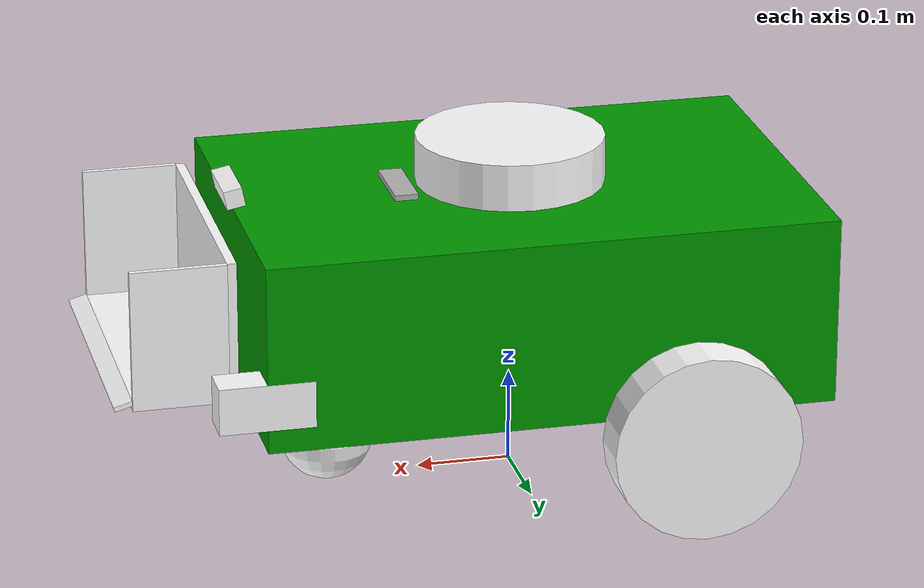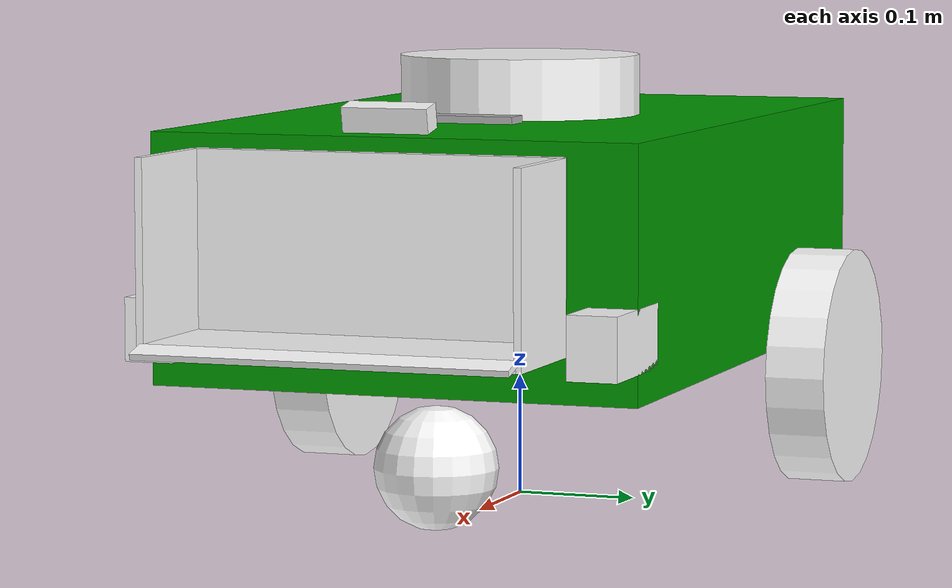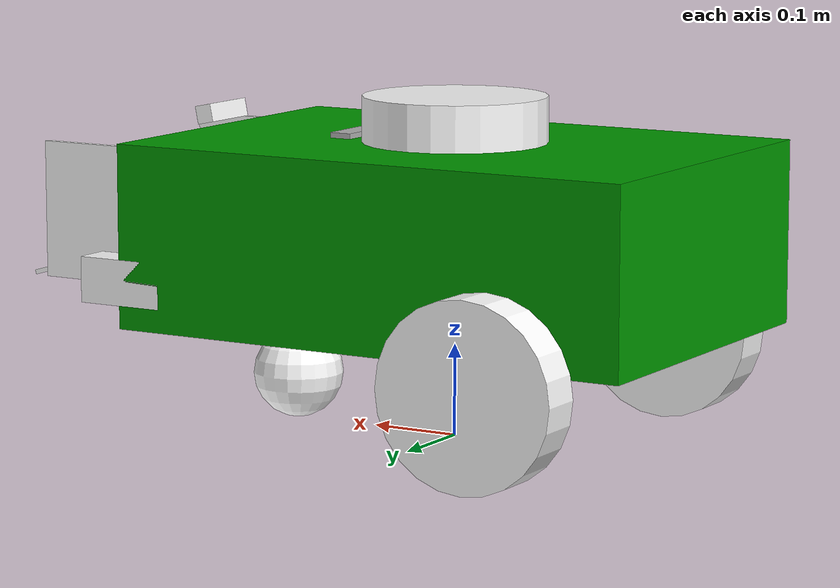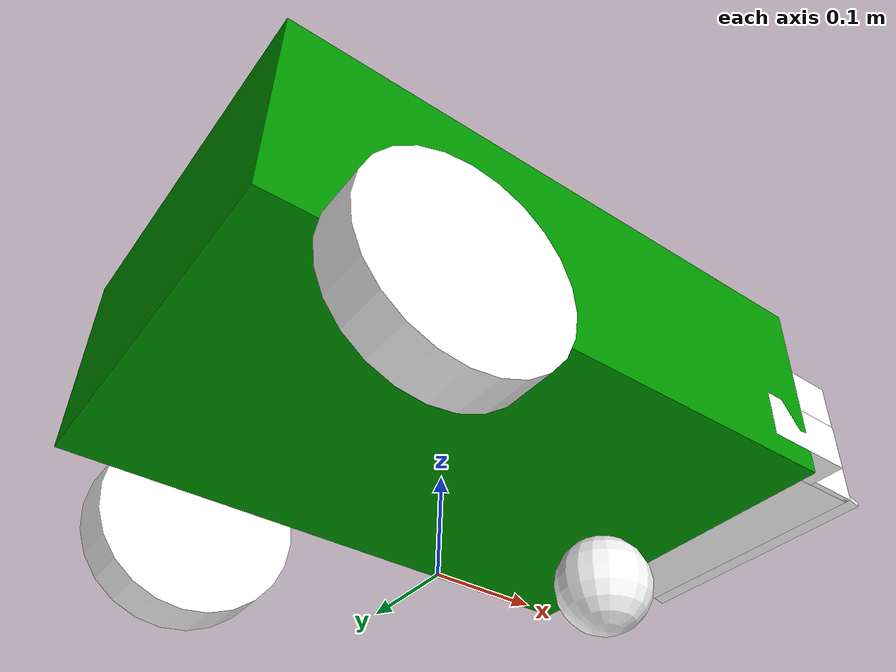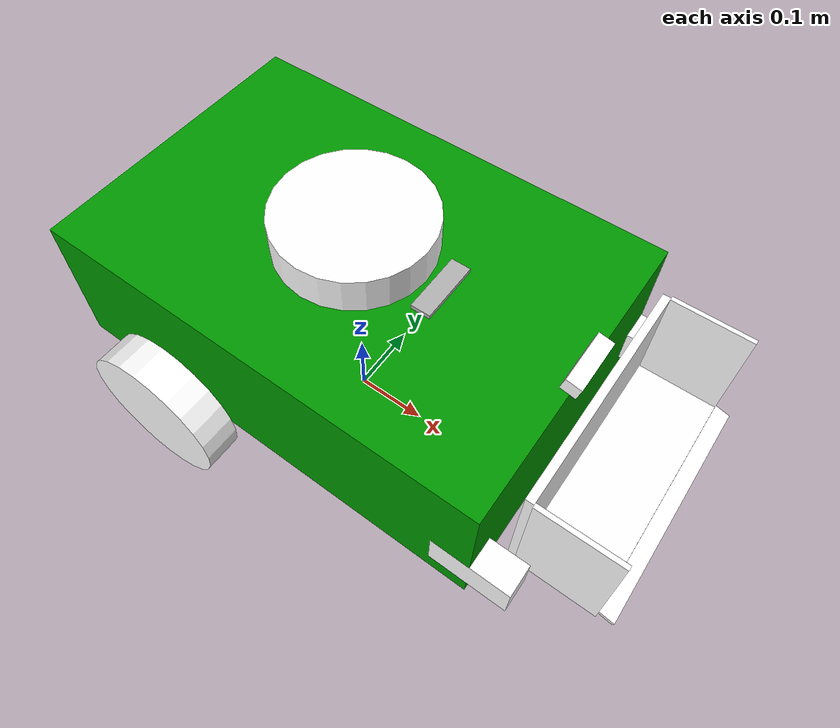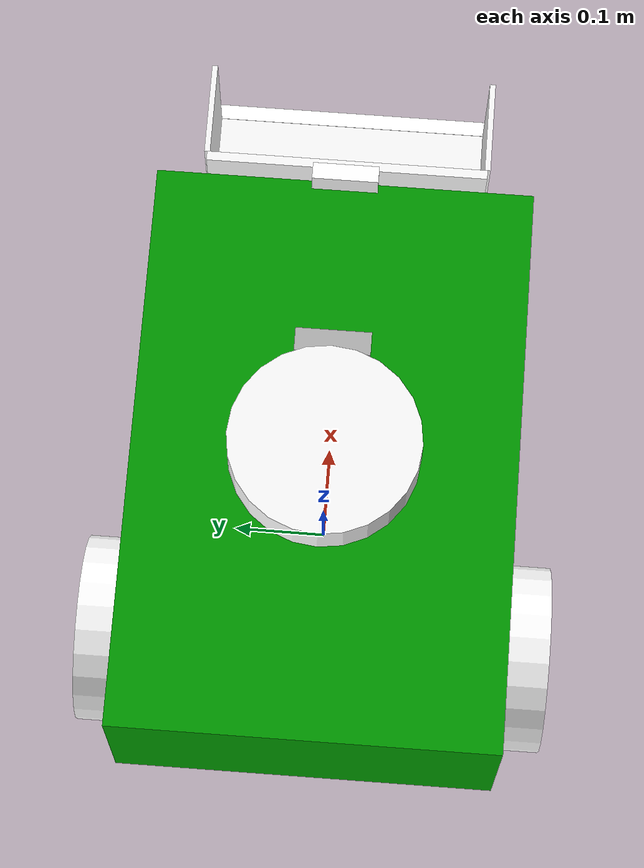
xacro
<?xml version="1.0"?>
<robot xmlns:xacro="http://www.ros.org/wiki/xacro" name="autonomous_sphere_collector">

    <ros2_control name="DiffDriveSystem" type="system">
        <hardware>
            <plugin>gz_ros2_control::GazeboSystem</plugin>
        </hardware>

        <!-- Left wheel joint -->
        <joint name="base_left_wheel">
            <command_interfaces>
                <command_interface name="velocity"/>
            </command_interfaces>
            <state_interfaces>
                <state_interface name="position"/>
                <state_interface name="velocity"/>
            </state_interfaces>
        </joint>

        <!-- Right wheel joint -->
        <joint name="base_right_wheel">
            <command_interfaces>
                <command_interface name="velocity"/>
            </command_interfaces>
            <state_interfaces>
                <state_interface name="position"/>
                <state_interface name="velocity"/>
            </state_interfaces>
        </joint>

        <!-- Left wing joint (for scoop control) -->
        <joint name="scoop_left_wing_joint">
            <command_interfaces>
                <command_interface name="position"/>
            </command_interfaces>
            <state_interfaces>
                <state_interface name="position"/>
                <state_interface name="velocity"/>
            </state_interfaces>
        </joint>

        <!-- Right wing joint (Added for completeness, must be included in ros2_control) -->
        <joint name="scoop_right_wing_joint">
            <command_interfaces>
                <command_interface name="position"/>
            </command_interfaces>
            <state_interfaces>
                <state_interface name="position"/>
                <state_interface name="velocity"/>
            </state_interfaces>
        </joint>
    </ros2_control>

    <!--  MATERIALS MACRO  -->
    <xacro:macro name="define_materials">
    <material name="grey">
        <color rgba="0.7 0.7 0.7 1"/>
    </material>

    <material name="green">
        <color rgba="0 0.6 0 1"/>
    </material>

    <material name="white">
        <color rgba="1 1 1 1"/>
    </material>
    <!-- GAZEBO SENSOR MACROS -->

    <!-- Lidar plugin macro -->
    <xacro:macro name="gazebo_lidar_plugin" params="reference name update_rate samples resolution min_angle max_angle min_range max_range range_res">
        <gazebo reference="${reference}">
            <sensor name="${name}" type="lidar">
                <update_rate>${update_rate}</update_rate>
                <lidar>
                    <horizontal>
                        <samples>${samples}</samples>
                        <resolution>${resolution}</resolution>
                        <min_angle>${min_angle}</min_angle>
                        <max_angle>${max_angle}</max_angle>
                    </horizontal>
                    <range>
                        <min>${min_range}</min>
                        <max>${max_range}</max>
                        <resolution>${range_res}</resolution>
                    </range>
                </lidar>
            </sensor>
        </gazebo>
    </xacro:macro>

    <!-- Camera plugin macro -->
    <xacro:macro name="gazebo_camera_plugin" params="reference name update_rate fov width height format near far">
        <gazebo reference="${reference}">
            <sensor name="${name}" type="camera">
                <update_rate>${update_rate}</update_rate>
                <camera>
                    <horizontal_fov>${fov}</horizontal_fov>
                    <image>
                        <width>${width}</width>
                        <height>${height}</height>
                        <format>${format}</format>
                    </image>
                    <clip>
                        <near>${near}</near>
                        <far>${far}</far>
                    </clip>
                </camera>
            </sensor>
        </gazebo>
    </xacro:macro>

    <!-- IMU plugin macro -->
    <xacro:macro name="gazebo_imu_plugin" params="reference name update_rate">
        <gazebo reference="${reference}">
            <sensor name="${name}" type="imu">
                <update_rate>${update_rate}</update_rate>
                <imu>
                    <angular_velocity/>
                    <linear_acceleration/>
                </imu>
            </sensor>
        </gazebo>
    </xacro:macro>

    <!-- ==================== GAZEBO SENSOR CALLS ==================== -->

    <!-- Lidar -->
    <xacro:gazebo_lidar_plugin
        reference="lidar"
        name="lidar_sensor"
        update_rate="30"
        samples="720" resolution="1"
        min_angle="-3.14" max_angle="3.14"
        min_range="0.1" max_range="30.0"
        range_res="0.01"/>

    <!-- Camera -->
    <xacro:gazebo_camera_plugin
        reference="camera_link"
        name="camera_sensor"
        update_rate="30"
        fov="1.57"
        width="640" height="480"
        format="R8G8B8"
        near="0.1" far="50.0"/>

    <!-- IMU -->
    <xacro:gazebo_imu_plugin
        reference="imu_link"
        name="imu_sensor"
        update_rate="100"/>

    </xacro:macro>

    <!-- MATERIALS CALL -->
    <xacro:define_materials/>

    <!-- DUMMY LINK AS A FRAME -->
    <link name="base_footprint"/>
    <link name="bucket"/>

    <!--  LINK MACROS  -->
    <xacro:macro name="box_link" params="name size_x size_y size_z origin_xyz origin_rpy mass material ixx:=0 iyy:=0 izz:=0 ixy:=0 ixz:=0 iyz:=0">
        <link name="${name}">
            <visual>
                <geometry><box size="${size_x} ${size_y} ${size_z}"/></geometry>
                <origin xyz="${origin_xyz}" rpy="${origin_rpy}"/>
                <material name="${material}"/>
            </visual>
            <collision>
                <geometry><box size="${size_x} ${size_y} ${size_z}"/></geometry>
                <origin xyz="${origin_xyz}" rpy="${origin_rpy}"/>
            </collision>
            <inertial>
                <mass value="${mass}"/>
                <origin xyz="${origin_xyz}" rpy="${origin_rpy}"/>
                <inertia ixx="${ixx}" iyy="${iyy}" izz="${izz}" ixy="${ixy}" ixz="${ixz}" iyz="${iyz}"/>
            </inertial>
        </link>
    </xacro:macro>

    <xacro:macro name="cylinder_link" params="name radius length origin_xyz origin_rpy material mass:=0.1 ixx:=0 iyy:=0 izz:=0">
        <link name="${name}">
            <visual>
                <geometry><cylinder radius="${radius}" length="${length}"/></geometry>
                <origin xyz="${origin_xyz}" rpy="${origin_rpy}"/>
                <material name="${material}"/>
            </visual>
            <collision>
                <geometry><cylinder radius="${radius}" length="${length}"/></geometry>
                <origin xyz="${origin_xyz}" rpy="${origin_rpy}"/>
            </collision>
            <inertial>
                <mass value="${mass}"/>
                <origin xyz="${origin_xyz}" rpy="${origin_rpy}"/>
                <inertia ixx="${ixx}" iyy="${iyy}" izz="${izz}" ixy="0" ixz="0" iyz="0"/>
            </inertial>
        </link>
    </xacro:macro>

    <!-- LINK CALLS  -->

    <!-- Base link -->
    <xacro:box_link
    name="base_link"
    size_x="0.6" size_y="0.4" size_z="0.2"
    origin_xyz="0 0 0.1" origin_rpy="0 0 0"
    mass="10.0" material="green"
    ixx="0.183" iyy="0.333" izz="0.500"/>

    <!-- Lidar -->
    <xacro:cylinder_link
    name="lidar"
    radius="0.1" length="0.05"
    origin_xyz="0 0 0" origin_rpy="0 0 0"
    mass="0.1" material="white"
    ixx="0.0001" iyy="0.0001" izz="0.0001"/>

    <!-- Camera -->
    <xacro:box_link
    name="camera_link"
    size_x="0.02" size_y="0.07" size_z="0.02"
    origin_xyz="0 0 0" origin_rpy="0 0 0"
    mass="0.1" material="white"
    ixx="0.0001" iyy="0.0001" izz="0.0001"/>

    <!-- IMU -->
    <xacro:box_link
    name="imu_link"
    size_x="0.025" size_y="0.08" size_z="0.01"
    origin_xyz="0 0 0" origin_rpy="0 0 0"
    mass="0.05" material="grey"
    ixx="0.00002" iyy="0.00002" izz="0.00002"/>

    <!--  WHEEL MACRO  -->
    <xacro:macro name="wheel_link" params="name radius length origin_rpy mass material ixx:=0.00375 iyy:=0.00375 izz:=0.005">
        <link name="${name}">
            <visual>
                <geometry>
                    <cylinder radius="${radius}" length="${length}"/>
                </geometry>
                <origin xyz="0 0 0" rpy="${origin_rpy}"/>
                <material name="${material}"/>
            </visual>
            <collision>
                <geometry>
                    <cylinder radius="${radius}" length="${length}"/>
                </geometry>
                <origin xyz="0 0 0" rpy="${origin_rpy}"/>
            </collision>
            <inertial>
                <mass value="${mass}"/>
                <origin xyz="0 0 0" rpy="${origin_rpy}"/>
                <inertia ixx="${ixx}" iyy="${iyy}" izz="${izz}" ixy="0.0" ixz="0.0" iyz="0.0"/>
            </inertial>
        </link>
    </xacro:macro>

<!--  WHEEL CALLS  -->
    <xacro:wheel_link
        name="left_wheel"
        radius="0.1" length="0.05"
        origin_rpy="1.57 0 0"
        mass="1.0"
        material="white"/>

    <xacro:wheel_link
        name="right_wheel"
        radius="0.1" length="0.05"
        origin_rpy="1.57 0 0"
        mass="1.0"
        material="white"/>

   <!--  CASTER WHEEL MACRO  -->
    <xacro:macro name="caster_link" params="name radius mass material ixx:=0.001 iyy:=0.001 izz:=0.001">
        <link name="${name}">
            <visual>
                <geometry>
                    <sphere radius="${radius}"/>
                </geometry>
                <origin xyz="0 0 0" rpy="0 0 0"/>
                <material name="${material}"/>
            </visual>
            <collision>
                <geometry>
                    <sphere radius="${radius}"/>
                </geometry>
                <origin xyz="0 0 0" rpy="0 0 0"/>
            </collision>
            <inertial>
                <mass value="${mass}"/>
                <origin xyz="0 0 0" rpy="0 0 0"/>
                <inertia ixx="${ixx}" iyy="${iyy}" izz="${izz}" ixy="0.0" ixz="0.0" iyz="0.0"/>
            </inertial>
        </link>
    </xacro:macro>

    <!--  CASTER WHEEL CALL  -->
    <xacro:caster_link
        name="caster_wheel"
        radius="0.05"
        mass="0.5"
        material="white"/>

    <!--  WING MACRO -->
    <xacro:macro name="wing_link" params="name size_x size_y size_z mass material ixx:=0.00104 iyy:=0.00229 izz:=0.00271">
        <link name="${name}">
            <visual>
                <geometry>
                    <box size="${size_x} ${size_y} ${size_z}"/>
                </geometry>
                <origin xyz="0 0 0" rpy="0 0 0"/>
                <material name="${material}"/>
            </visual>
            <collision>
                <geometry>
                    <box size="${size_x} ${size_y} ${size_z}"/>
                </geometry>
                <origin xyz="0 0 0" rpy="0 0 0"/>
            </collision>
            <inertial>
                <mass value="${mass}"/>
                <origin xyz="0 0 0" rpy="0 0 0"/>
                <inertia ixx="${ixx}" iyy="${iyy}" izz="${izz}" ixy="0.0" ixz="0.0" iyz="0.0"/>
            </inertial>
        </link>
    </xacro:macro>

    <!--  WING CALLS -->
    <xacro:wing_link
        name="scoop_left_wing"
        size_x="0.1" size_y="0.040" size_z="0.05"
        mass="0.5"
        material="white"/>

    <xacro:wing_link
        name="scoop_right_wing"
        size_x="0.1" size_y="0.040" size_z="0.05"
        mass="0.5"
        material="white"/>

    <!-- BUCKET WALL CALLS  -->

    <!-- Bottom wall -->
    <xacro:box_link
        name="bucket_bottom"
        size_x="0.1" size_y="0.3" size_z="0.01"
        origin_xyz="0 0 0" origin_rpy="0 0 0"
        mass="0.3" material="white"
        ixx="0.000075" iyy="0.00075" izz="0.00075"/>

    <!-- Back wall -->
    <xacro:box_link
        name="bucket_back_wall"
        size_x="0.01" size_y="0.3" size_z="0.15"
        origin_xyz="0 0 0" origin_rpy="0 0 0"
        mass="0.5" material="white"
        ixx="0.0010" iyy="0.0031" izz="0.0031"/>

    <!-- Left wall -->
    <xacro:box_link
        name="bucket_left_wall"
        size_x="0.1" size_y="0.006" size_z="0.15"
        origin_xyz="0 0 0" origin_rpy="0 0 0"
        mass="0.2" material="white"
        ixx="0.00038" iyy="0.00013" izz="0.00042"/>

    <!-- Right wall -->
    <xacro:box_link
        name="bucket_right_wall"
        size_x="0.1" size_y="0.006" size_z="0.15"
        origin_xyz="0 0 0" origin_rpy="0 0 0"
        mass="0.2" material="white"
        ixx="0.00038" iyy="0.00013" izz="0.00042"/>

   <!--  BUCKET FRONT LIP CALL -->
    <xacro:box_link
        name="bucket_front_lip"
        size_x="0.02" size_y="0.3" size_z="0.005"
        origin_xyz="0 0 0" origin_rpy="0 0 0"
        mass="0.1" material="white"
        ixx="0.000019" iyy="0.00045" izz="0.00045"/>

    <!-- BUCKET JOINT MACRO  -->
    <xacro:macro name="bucket_joint" params="name parent child xyz rpy">
    <joint name="${name}" type="fixed">
        <parent link="${parent}"/>
        <child link="${child}"/>
        <origin xyz="${xyz}" rpy="${rpy}"/>
    </joint>
    </xacro:macro>

    <!--  BUCKET JOINT CALLS  -->

    <!-- Bottom joint -->
    <xacro:bucket_joint
        name="bucket_bottom_joint"
        parent="bucket"
        child="bucket_bottom"
        xyz="0.38 0 0.01"
        rpy="0 0 0"/>

    <!-- Back wall joint -->
    <xacro:bucket_joint
        name="bucket_back_wall_joint"
        parent="bucket"
        child="bucket_back_wall"
        xyz="0.325 0 0.08"
        rpy="0 0 0"/>

    <!-- Left wall joint -->
    <xacro:bucket_joint
        name="bucket_left_wall_joint"
        parent="bucket"
        child="bucket_left_wall"
        xyz="0.38 0.15 0.08"
        rpy="0 0 0"/>

    <!-- Right wall joint -->
    <xacro:bucket_joint
        name="bucket_right_wall_joint"
        parent="bucket"
        child="bucket_right_wall"
        xyz="0.38 -0.15 0.08"
        rpy="0 0 0"/>

    <!-- Front lip joint -->
    <xacro:bucket_joint
        name="bucket_front_lip_joint"
        parent="bucket_bottom"
        child="bucket_front_lip"
        xyz="0.059 0.0 0"
        rpy="0 0.28 0"/>

    <!-- BASE JOINT MACRO  -->
    <xacro:macro name="base_joint" params="name parent child xyz rpy">
        <joint name="${name}" type="fixed">
            <parent link="${parent}"/>
            <child link="${child}"/>
            <origin xyz="${xyz}" rpy="${rpy}"/>
        </joint>
    </xacro:macro>

    <!-- BASE JOINT CALLS  -->

    <!-- Footprint to base -->
    <xacro:base_joint
        name="footprint_base_joint"
        parent="base_footprint"
        child="base_link"
        xyz="0 0 0.12"
        rpy="0 0 0"/>

    <!-- Base to lidar -->
    <xacro:base_joint
        name="base_lidar_joint"
        parent="base_link"
        child="lidar"
        xyz="0 0 0.225"
        rpy="0 0 0"/>

        <!--  WHEEL JOINT MACROS -->
    <xacro:macro name="wheel_joint_continuous" params="name parent child xyz rpy axis">
        <joint name="${name}" type="continuous">
            <parent link="${parent}"/>
            <child link="${child}"/>
            <origin xyz="${xyz}" rpy="${rpy}"/>
            <axis xyz="${axis}"/>
        </joint>
    </xacro:macro>

    <xacro:macro name="wheel_joint_fixed" params="name parent child xyz rpy">
        <joint name="${name}" type="fixed">
            <parent link="${parent}"/>
            <child link="${child}"/>
            <origin xyz="${xyz}" rpy="${rpy}"/>
        </joint>
    </xacro:macro>

    <!-- WHEEL JOINT CALLS  -->

    <!-- Left wheel joint -->
    <xacro:wheel_joint_continuous
        name="base_left_wheel"
        parent="base_link"
        child="left_wheel"
        xyz="-0.15 0.225 -0.02"
        rpy="0 0 0"
        axis="0 1 0"/>

    <!-- Right wheel joint -->
    <xacro:wheel_joint_continuous
        name="base_right_wheel"
        parent="base_link"
        child="right_wheel"
        xyz="-0.15 -0.225 -0.02"
        rpy="0 0 0"
        axis="0 1 0"/>

    <!-- Caster wheel joint -->
    <xacro:wheel_joint_fixed
        name="base_caster_wheel"
        parent="base_link"
        child="caster_wheel"
        xyz="0.2 0 -0.07"
        rpy="0 0 0"/>

        <!--  SCOOP JOINT MACROS -->
    <xacro:macro name="fixed_joint" params="name parent child xyz rpy">
    <joint name="${name}" type="fixed">
        <parent link="${parent}"/>
        <child link="${child}"/>
        <origin xyz="${xyz}" rpy="${rpy}"/>
    </joint>
    </xacro:macro>

    <xacro:macro name="revolute_joint" params="name parent child xyz rpy axis lower upper effort velocity">
    <joint name="${name}" type="revolute">
        <parent link="${parent}"/>
        <child link="${child}"/>
        <origin xyz="${xyz}" rpy="${rpy}"/>
        <axis xyz="${axis}"/>
        <limit lower="${lower}" upper="${upper}" effort="${effort}" velocity="${velocity}"/>
    </joint>
    </xacro:macro>

    <!--  SCOOP JOINT CALLS -->

    <!-- Bucket to left wing (fixed) -->
    <xacro:fixed_joint
        name="bucket_revolute_joint"
        parent="scoop_left_wing"
        child="bucket"
        xyz="-0.3 -0.18 -0.015"
        rpy="0 0 0.0"/>

    <!-- Right wing (revolute) -->
    <xacro:revolute_joint
        name="scoop_right_wing_joint"
        parent="base_link"
        child="scoop_right_wing"
        xyz="0.30 -0.18 0.05"
        rpy="0 0 0"
        axis="0 1 0"
        lower="-1.57" upper="1.57"
        effort="10.0" velocity="1.0"/>

    <!-- Left wing (revolute) -->
    <xacro:revolute_joint
        name="scoop_left_wing_joint"
        parent="base_link"
        child="scoop_left_wing"
        xyz="0.30 0.18 0.05"
        rpy="0 0 0"
        axis="0 1 0"
        lower="-1.57" upper="1.57"
        effort="10.0" velocity="1.0"/>

    <!--SENSOR JOINT CALLS  -->

    <!-- Camera joint -->
    <xacro:fixed_joint
        name="camera_joint"
        parent="base_link"
        child="camera_link"
        xyz="0.30 0.0 0.215"
        rpy="0 0.20 0"/>

    <!-- IMU joint -->
    <xacro:fixed_joint
        name="imu_joint"
        parent="base_link"
        child="imu_link"
        xyz="0.12 0.0 0.201"
        rpy="0 0 0"/>

</robot>
